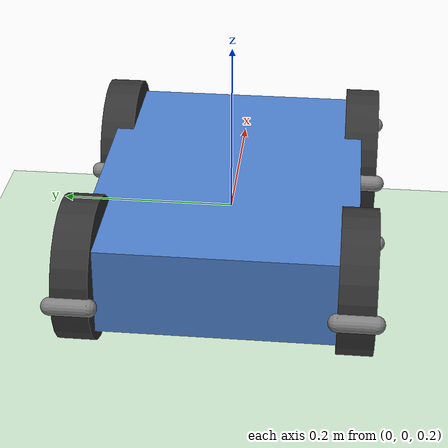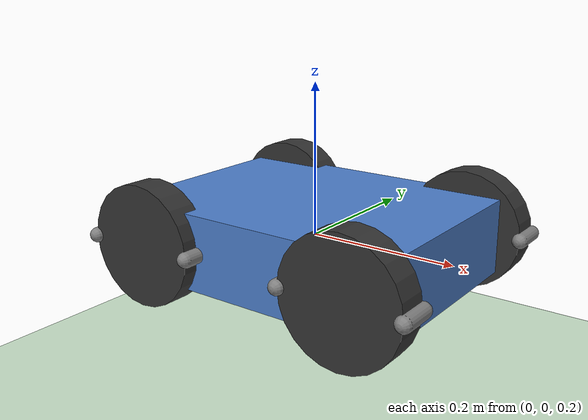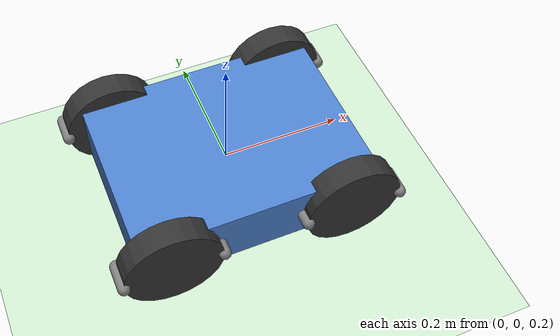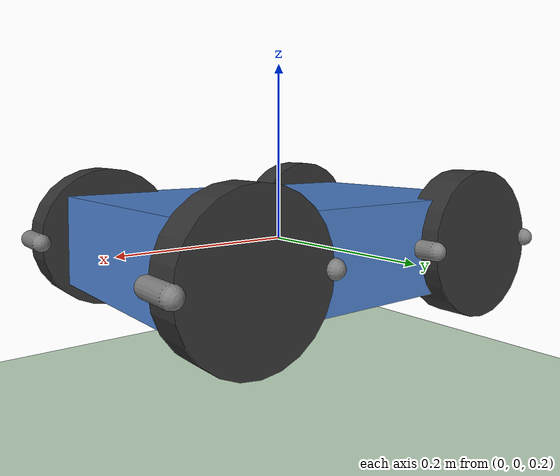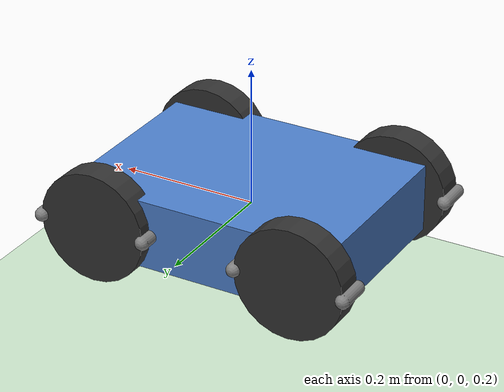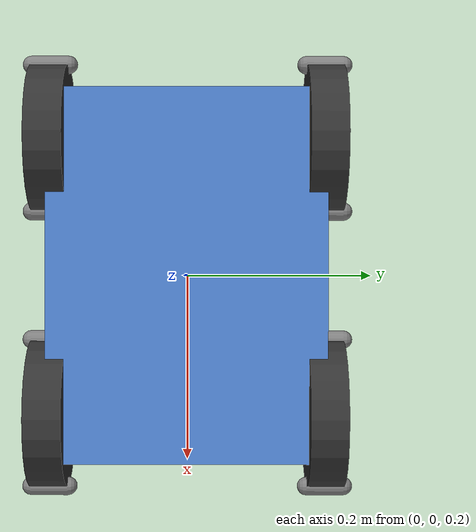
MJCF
<mujoco>
    <option timestep="0.01"/>
    <option cone="elliptic"/>
    <option impratio="0.5"/>

    <worldbody>
        <!-- 地面 -->
        <geom name="ground" type="plane" size="5 5 0.1" rgba="0.8 0.9 0.8 1"
              friction="1 0.5 0.1" solimp="0.9 0.95 0.001" solref="0.02 1"/>

        <!-- 小车底盘 -->
        <body name="chassis" pos="0 0 0.2">
            <freejoint name="chassis_free"/>
            <geom name="chassis_geom" type="box" size="0.2 0.15 0.05" mass="2" rgba="0.3 0.5 0.8 1"/>

            <!-- 前左轮 -->
            <body name="left_f_wheel" pos="-0.15 0.15 0" euler="0 0 0">
                <joint name="left_wheel_f_joint" type="hinge" axis="0 -1 0" limited="false" damping="0.1"/>
                <geom name="left_wheel_f_core" type="cylinder" size="0.08 0.02" mass="0.3" rgba="0.2 0.2 0.2 1" euler="90 0 0"/>

                <!-- 滚子 -->
                <body name="left_f_roller1" pos="0.08 0 0" euler="0 45 0">
                    <joint type="hinge" axis="0 0 1" limited="false"/>
                    <geom type="capsule" fromto="0 -0.02 0 0 0.02 0" size="0.01" mass="0.05" rgba="0.5 0.5 0.5 1"/>
                </body>
                <body name="left_f_roller2" pos="-0.08 0 0" euler="0 45 0">
                    <joint type="hinge" axis="0 0 1" limited="false"/>
                    <geom type="capsule" fromto="0 -0.02 0 0 0.02 0" size="0.01" mass="0.05" rgba="0.5 0.5 0.5 1"/>
                </body>
            </body>

            <!-- 前右轮 -->
            <body name="right_f_wheel" pos="-0.15 -0.15 0" euler="0 0 0">
                <joint name="right_wheel_f_joint" type="hinge" axis="0 -1 0" limited="false" damping="0.1"/>
                <geom name="right_wheel_f_core" type="cylinder" size="0.08 0.02" mass="0.3" rgba="0.2 0.2 0.2 1" euler="90 0 0"/>

                <!-- 滚子 -->
                <body name="right_f_roller1" pos="0.08 0 0" euler="0 -45 0">
                    <joint type="hinge" axis="0 0 1" limited="false"/>
                    <geom type="capsule" fromto="0 -0.02 0 0 0.02 0" size="0.01" mass="0.05" rgba="0.5 0.5 0.5 1"/>
                </body>
                <body name="right_f_roller2" pos="-0.08 0 0" euler="0 -45 0">
                    <joint type="hinge" axis="0 0 1" limited="false"/>
                    <geom type="capsule" fromto="0 -0.02 0 0 0.02 0" size="0.01" mass="0.05" rgba="0.5 0.5 0.5 1"/>
                </body>
            </body>

            <!-- 后左轮 -->
            <body name="left_b_wheel" pos="0.15 0.15 0" euler="0 0 0">
                <joint name="left_wheel_b_joint" type="hinge" axis="0 -1 0" limited="false" damping="0.1"/>
                <geom name="left_wheel_b_core" type="cylinder" size="0.08 0.02" mass="0.3" rgba="0.2 0.2 0.2 1" euler="90 0 0"/>

                <!-- 滚子 -->
                <body name="left_b_roller1" pos="0.08 0 0" euler="0 -45 0">
                    <joint type="hinge" axis="0 0 1" limited="false"/>
                    <geom type="capsule" fromto="0 -0.02 0 0 0.02 0" size="0.01" mass="0.05" rgba="0.5 0.5 0.5 1"/>
                </body>
                <body name="left_b_roller2" pos="-0.08 0 0" euler="0 -45 0">
                    <joint type="hinge" axis="0 0 1" limited="false"/>
                    <geom type="capsule" fromto="0 -0.02 0 0 0.02 0" size="0.01" mass="0.05" rgba="0.5 0.5 0.5 1"/>
                </body>
            </body>

            <!-- 后右轮 -->
            <body name="right_b_wheel" pos="0.15 -0.15 0" euler="0 0 0">
                <joint name="right_wheel_b_joint" type="hinge" axis="0 -1 0" limited="false" damping="0.1"/>
                <geom name="right_wheel_b_core" type="cylinder" size="0.08 0.02" mass="0.3" rgba="0.2 0.2 0.2 1" euler="90 0 0"/>

                <!-- 滚子 -->
                <body name="right_b_roller1" pos="0.08 0 0" euler="0 45 0">
                    <joint type="hinge" axis="0 0 1" limited="false"/>
                    <geom type="capsule" fromto="0 -0.02 0 0 0.02 0" size="0.01" mass="0.05" rgba="0.5 0.5 0.5 1"/>
                </body>
                <body name="right_b_roller2" pos="-0.08 0 0" euler="0 45 0">
                    <joint type="hinge" axis="0 0 1" limited="false"/>
                    <geom type="capsule" fromto="0 -0.02 0 0 0.02 0" size="0.01" mass="0.05" rgba="0.5 0.5 0.5 1"/>
                </body>
            </body>
        </body>
    </worldbody>

    <actuator>
        <motor name="left_f_wheel_motor" joint="left_wheel_f_joint" gear="1" ctrllimited="true" ctrlrange="-2 2"/>
        <motor name="right_f_wheel_motor" joint="right_wheel_f_joint" gear="1" ctrllimited="true" ctrlrange="-2 2"/>
        <motor name="left_b_wheel_motor" joint="left_wheel_b_joint" gear="1" ctrllimited="true" ctrlrange="-2 2"/>
        <motor name="right_b_wheel_motor" joint="right_wheel_b_joint" gear="1" ctrllimited="true" ctrlrange="-2 2"/>
    </actuator>
</mujoco>
